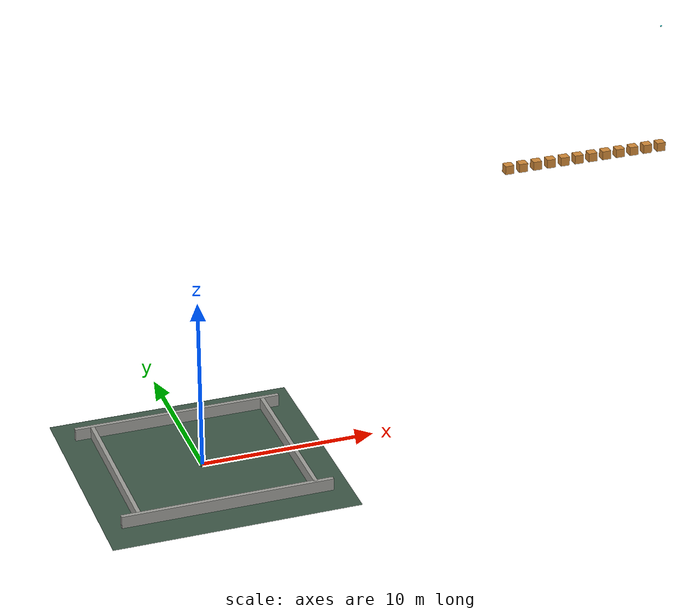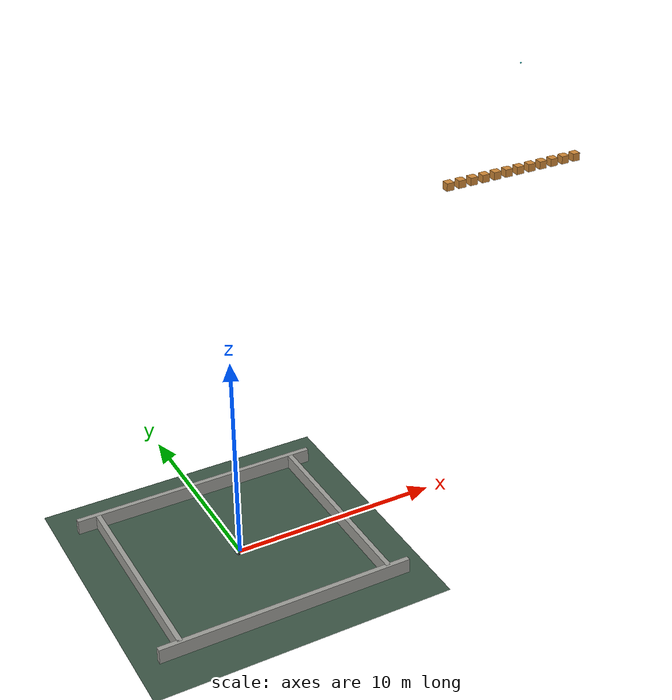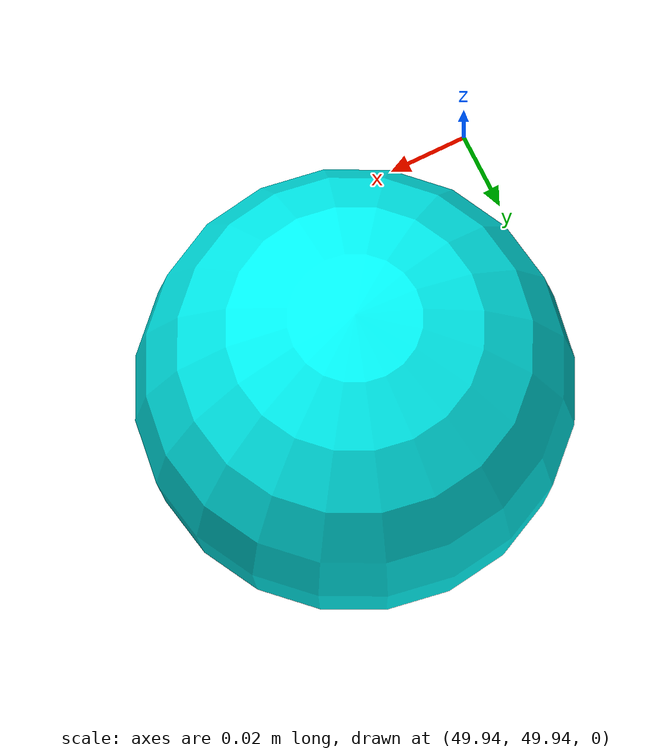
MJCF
<mujoco model="tracked_nav">
  <compiler angle="degree" coordinate="local"/>
  <option timestep="0.01" gravity="0 0 -9.81" integrator="Euler" cone="elliptic" iterations="80">
    <flag contact="enable"/>
  </option>

  <default>
    <joint damping="0.2" armature="0.01"/>
    <geom condim="6" friction="1.2 0.04 0.002" solref="0.02 1" solimp="0.8 0.9 0.001"/>
    <motor ctrllimited="true"/>
  </default>

  <asset>
    <material name="floor_mat" rgba="0.24 0.34 0.28 1"/>
    <material name="wall_mat" rgba="0.62 0.62 0.60 1"/>
    <material name="obs_mat" rgba="0.82 0.54 0.22 1"/>
    <material name="track_mat" rgba="0.08 0.08 0.08 1"/>
    <material name="body_mat" rgba="0.12 0.22 0.52 1"/>
    <material name="sensor_mat" rgba="0.02 0.02 0.02 1"/>
    <material name="goal_mat" rgba="1.0 0.84 0.0 1"/>
    <material name="guide_mat" rgba="0.0 0.95 0.95 0.9"/>
    <material name="path_mat" rgba="0.0 0.85 0.16 0.75"/>
    <material name="ray_mat" rgba="1.0 0.28 0.02 0.45"/>
  </asset>

  <worldbody>
    <light name="top_light" pos="0 0 9" dir="0 0 -1" diffuse="0.95 0.95 0.95" ambient="0.55 0.55 0.55"/>
    <light name="side_light" pos="-6 -4 5" dir="1 1 -1" diffuse="0.45 0.45 0.45" ambient="0.20 0.20 0.20"/>
    <camera name="top_view" pos="0 -8 8" xyaxes="1 0 0 0 0.707 0.707" mode="fixed"/>
    <camera name="robot_view" pos="-0.75 0 0.55" xyaxes="0 -1 0 0.35 0 0.94" mode="trackcom"/>

    <geom name="ground" type="plane" size="7 7 0.1" material="floor_mat" friction="1.2 0.02 0.001"/>
    <geom name="goal_marker" type="sphere" size="0.16" pos="0 0 0.16" material="goal_mat" contype="0" conaffinity="0"/>

    <geom name="wall_n" type="box" size="6.0 0.12 0.35" pos="0 5.0 0.35" material="wall_mat"/>
    <geom name="wall_s" type="box" size="6.0 0.12 0.35" pos="0 -5.0 0.35" material="wall_mat"/>
    <geom name="wall_e" type="box" size="0.12 5.0 0.35" pos="5.0 0 0.35" material="wall_mat"/>
    <geom name="wall_w" type="box" size="0.12 5.0 0.35" pos="-5.0 0 0.35" material="wall_mat"/>

    <body name="obsb_0" pos="30 30 0.3"><geom name="obs_0" type="box" size="0.3 0.3 0.3" material="obs_mat"/></body>
    <body name="obsb_1" pos="31 30 0.3"><geom name="obs_1" type="box" size="0.3 0.3 0.3" material="obs_mat"/></body>
    <body name="obsb_2" pos="32 30 0.3"><geom name="obs_2" type="box" size="0.3 0.3 0.3" material="obs_mat"/></body>
    <body name="obsb_3" pos="33 30 0.3"><geom name="obs_3" type="box" size="0.3 0.3 0.3" material="obs_mat"/></body>
    <body name="obsb_4" pos="34 30 0.3"><geom name="obs_4" type="box" size="0.3 0.3 0.3" material="obs_mat"/></body>
    <body name="obsb_5" pos="35 30 0.3"><geom name="obs_5" type="box" size="0.3 0.3 0.3" material="obs_mat"/></body>
    <body name="obsb_6" pos="36 30 0.3"><geom name="obs_6" type="box" size="0.3 0.3 0.3" material="obs_mat"/></body>
    <body name="obsb_7" pos="37 30 0.3"><geom name="obs_7" type="box" size="0.3 0.3 0.3" material="obs_mat"/></body>
    <body name="obsb_8" pos="38 30 0.3"><geom name="obs_8" type="box" size="0.3 0.3 0.3" material="obs_mat"/></body>
    <body name="obsb_9" pos="39 30 0.3"><geom name="obs_9" type="box" size="0.3 0.3 0.3" material="obs_mat"/></body>
    <body name="obsb_10" pos="40 30 0.3"><geom name="obs_10" type="box" size="0.3 0.3 0.3" material="obs_mat"/></body>
    <body name="obsb_11" pos="41 30 0.3"><geom name="obs_11" type="box" size="0.3 0.3 0.3" material="obs_mat"/></body>

    <body name="chassis" pos="0 0 0.06">
      <joint name="root_x" type="slide" axis="1 0 0" damping="0.8"/>
      <joint name="root_y" type="slide" axis="0 1 0" damping="0.8"/>
      <joint name="root_yaw" type="hinge" axis="0 0 1" damping="0.6"/>
      <geom name="base_link" type="box" size="0.23 0.18 0.08" pos="0 0 0.04" mass="2.6" material="body_mat" friction="0.7 0.03 0.001"/>
      <geom name="skid_pad" type="box" size="0.22 0.17 0.012" pos="0 0 -0.045" mass="0.15" rgba="0.04 0.04 0.04 1" friction="1.8 0.05 0.002"/>
      <geom name="front_bumper" type="box" size="0.035 0.17 0.055" pos="0.25 0 0.035" mass="0.12" rgba="0.10 0.10 0.12 1"/>
      <geom name="lidar" type="cylinder" size="0.035 0.025" pos="0.08 0 0.15" mass="0.04" material="sensor_mat"/>
      <camera name="front_depth_proxy" pos="0.18 0 0.18" xyaxes="0 -1 0 0 0 1" mode="fixed"/>

      <body name="wheel_fl" pos="0.16 0.20 0.0" quat="0.7071068 0.7071068 0 0">
        <joint name="wheel_fl_joint" axis="0 0 1" type="hinge"/>
        <geom name="wheel_fl_geom" type="cylinder" size="0.055 0.035" mass="0.18" material="track_mat" friction="2.2 0.12 0.01"/>
      </body>
      <body name="wheel_rl" pos="-0.16 0.20 0.0" quat="0.7071068 0.7071068 0 0">
        <joint name="wheel_rl_joint" axis="0 0 1" type="hinge"/>
        <geom name="wheel_rl_geom" type="cylinder" size="0.055 0.035" mass="0.18" material="track_mat" friction="2.2 0.12 0.01"/>
      </body>
      <body name="wheel_fr" pos="0.16 -0.20 0.0" quat="0.7071068 0.7071068 0 0">
        <joint name="wheel_fr_joint" axis="0 0 1" type="hinge"/>
        <geom name="wheel_fr_geom" type="cylinder" size="0.055 0.035" mass="0.18" material="track_mat" friction="2.2 0.12 0.01"/>
      </body>
      <body name="wheel_rr" pos="-0.16 -0.20 0.0" quat="0.7071068 0.7071068 0 0">
        <joint name="wheel_rr_joint" axis="0 0 1" type="hinge"/>
        <geom name="wheel_rr_geom" type="cylinder" size="0.055 0.035" mass="0.18" material="track_mat" friction="2.2 0.12 0.01"/>
      </body>
    </body>

    <geom name="guide" type="sphere" size="0.055" pos="50 50 0.04" material="guide_mat" contype="0" conaffinity="0"/>
    <geom name="path_0" type="sphere" size="0.035" pos="50 50 0.03" material="path_mat" contype="0" conaffinity="0"/>
    <geom name="path_1" type="sphere" size="0.035" pos="50 50 0.03" material="path_mat" contype="0" conaffinity="0"/>
    <geom name="path_2" type="sphere" size="0.035" pos="50 50 0.03" material="path_mat" contype="0" conaffinity="0"/>
    <geom name="path_3" type="sphere" size="0.035" pos="50 50 0.03" material="path_mat" contype="0" conaffinity="0"/>
    <geom name="path_4" type="sphere" size="0.035" pos="50 50 0.03" material="path_mat" contype="0" conaffinity="0"/>
    <geom name="path_5" type="sphere" size="0.035" pos="50 50 0.03" material="path_mat" contype="0" conaffinity="0"/>
    <geom name="path_6" type="sphere" size="0.035" pos="50 50 0.03" material="path_mat" contype="0" conaffinity="0"/>
    <geom name="path_7" type="sphere" size="0.035" pos="50 50 0.03" material="path_mat" contype="0" conaffinity="0"/>
    <geom name="path_8" type="sphere" size="0.035" pos="50 50 0.03" material="path_mat" contype="0" conaffinity="0"/>
    <geom name="path_9" type="sphere" size="0.035" pos="50 50 0.03" material="path_mat" contype="0" conaffinity="0"/>
    <geom name="path_10" type="sphere" size="0.035" pos="50 50 0.03" material="path_mat" contype="0" conaffinity="0"/>
    <geom name="path_11" type="sphere" size="0.035" pos="50 50 0.03" material="path_mat" contype="0" conaffinity="0"/>
  </worldbody>

  <actuator>
    <velocity name="motor_fl" joint="wheel_fl_joint" kv="0.25" ctrlrange="-14 14"/>
    <velocity name="motor_rl" joint="wheel_rl_joint" kv="0.25" ctrlrange="-14 14"/>
    <velocity name="motor_fr" joint="wheel_fr_joint" kv="0.25" ctrlrange="-14 14"/>
    <velocity name="motor_rr" joint="wheel_rr_joint" kv="0.25" ctrlrange="-14 14"/>
  </actuator>
</mujoco>
